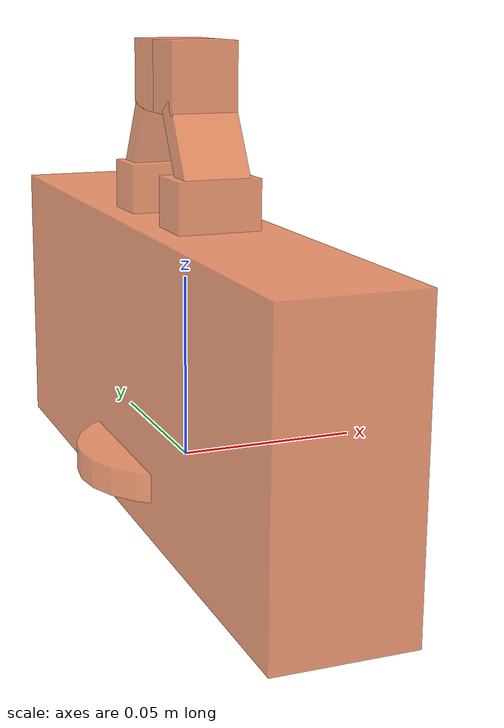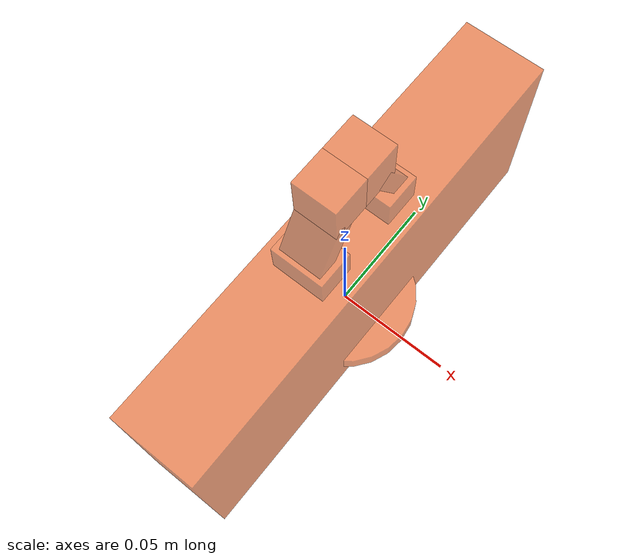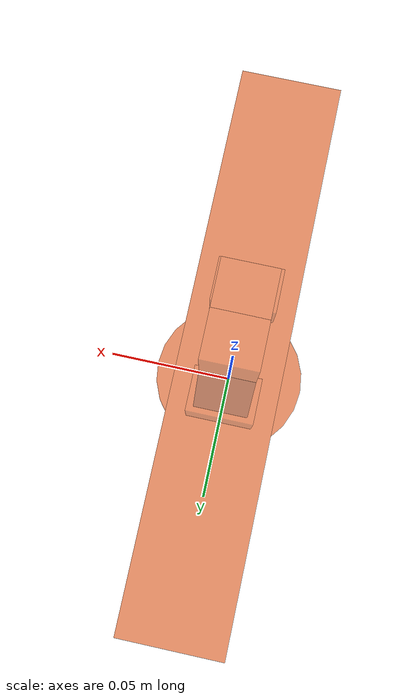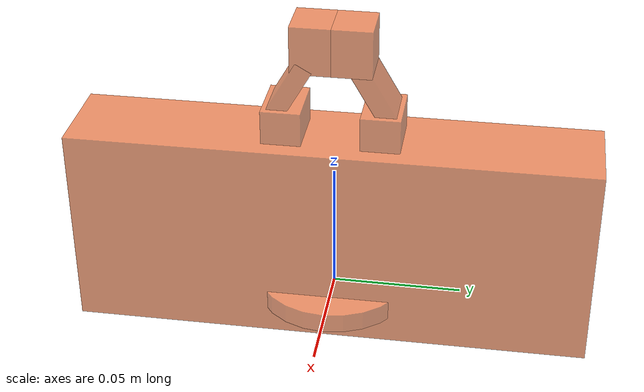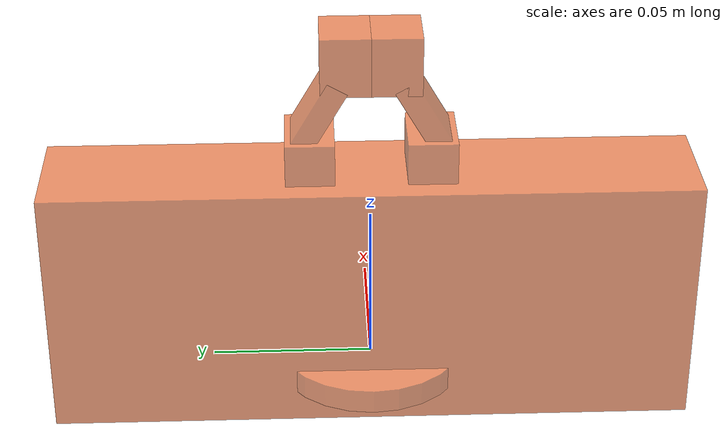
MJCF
<mujoco model="panda_gripper">
  <compiler angle="radian" autolimits="true" />
  <option gravity="0 0 0" timestep="0.001" />
  <visual>
    <global offwidth="3840" offheight="2160" />
  </visual>
  <asset>
    <texture type="skybox" builtin="gradient" rgb1="1 1 1" rgb2="1 1 1" width="32" height="512" />
  </asset>
  <worldbody>
    <light pos="0 0 5" dir="0 0 -1" directional="true" />
    <body name="hand_root">
      <body name="panda_hand">
        <inertial pos="-0.01 0 0.03" quat="0.5 0.5 0.5 0.5" mass="0.73" diaginertia="0.0025 0.0017 0.001" />
        <geom size="0.018 0.04 0.1" pos="0 0 0.02617" quat="0.707107 0.707106 0 0" type="box" group="1" rgba="0.9 0.35 0.1 0.65" />
        <geom size="0.03 0.00385" pos="0 0 0.0003" type="cylinder" group="1" rgba="0.9 0.35 0.1 0.65" />
        <body name="panda_hand_tcp" pos="0 0 0.1034" />
        <body name="panda_leftfinger" pos="0 0 0.0584">
          <inertial pos="0 0 0" mass="0.015" diaginertia="2.375e-06 2.375e-06 7.5e-07" />
          <joint name="panda_finger_joint1" pos="0 0 0" axis="0 1 0" type="slide" range="0 0.04" actuatorfrcrange="-100 100" damping="0.1" armature="0.0002" frictionloss="0.0" />
          <geom size="0.011 0.0075 0.01" pos="0 0.0185 0.011" type="box" group="1" rgba="0.9 0.35 0.1 0.65" />
          <geom size="0.011 0.0044 0.0019" pos="0 0.0068 0.0022" type="box" group="1" rgba="0.9 0.35 0.1 0.65" />
          <geom size="0.00875 0.0035 0.01175" pos="0 0.0159 0.02835" quat="0.965926 0.258819 0 0" type="box" group="1" rgba="0.9 0.35 0.1 0.65" />
          <geom size="0.00875 0.0076 0.00925" pos="0 0.00758 0.04525" type="box" group="1" rgba="0.9 0.35 0.1 0.65" />
        </body>
        <body name="panda_rightfinger" pos="0 0 0.0584">
          <inertial pos="0 0 0" mass="0.015" diaginertia="2.375e-06 2.375e-06 7.5e-07" />
          <joint name="panda_finger_joint2" pos="0 0 0" axis="0 -1 0" type="slide" range="0 0.04" actuatorfrcrange="-100 100" damping="0.0" armature="0.0" frictionloss="0.0" />
          <geom size="0.011 0.0075 0.01" pos="0 -0.0185 0.011" type="box" group="1" rgba="0.9 0.35 0.1 0.65" />
          <geom size="0.011 0.0044 0.0019" pos="0 -0.0068 0.0022" type="box" group="1" rgba="0.9 0.35 0.1 0.65" />
          <geom size="0.00875 0.0035 0.01175" pos="0 -0.0159 0.02835" quat="0.965926 -0.258819 0 0" type="box" group="1" rgba="0.9 0.35 0.1 0.65" />
          <geom size="0.00875 0.0076 0.00925" pos="0 -0.00758 0.04525" type="box" group="1" rgba="0.9 0.35 0.1 0.65" />
        </body>
      </body>
    </body>
  </worldbody>
  <contact>
    <exclude name="ex_panda_hand_panda_hand_tcp" body1="panda_hand" body2="panda_hand_tcp" />
    <exclude name="ex_panda_hand_panda_leftfinger" body1="panda_hand" body2="panda_leftfinger" />
    <exclude name="ex_panda_hand_panda_rightfinger" body1="panda_hand" body2="panda_rightfinger" />
  </contact>
  <equality>
    <joint name="panda_finger_joint2_mimic" joint1="panda_finger_joint2" joint2="panda_finger_joint1" polycoef="0 1 0 0 0" solref="0.002 1" solimp="0.9 0.99 0.001" />
  </equality>
  <actuator>
    <position name="panda_finger_joint1_actuator" joint="panda_finger_joint1" kp="1" forcerange="-1 1" ctrlrange="0.0 0.04" />
  </actuator>
</mujoco>
